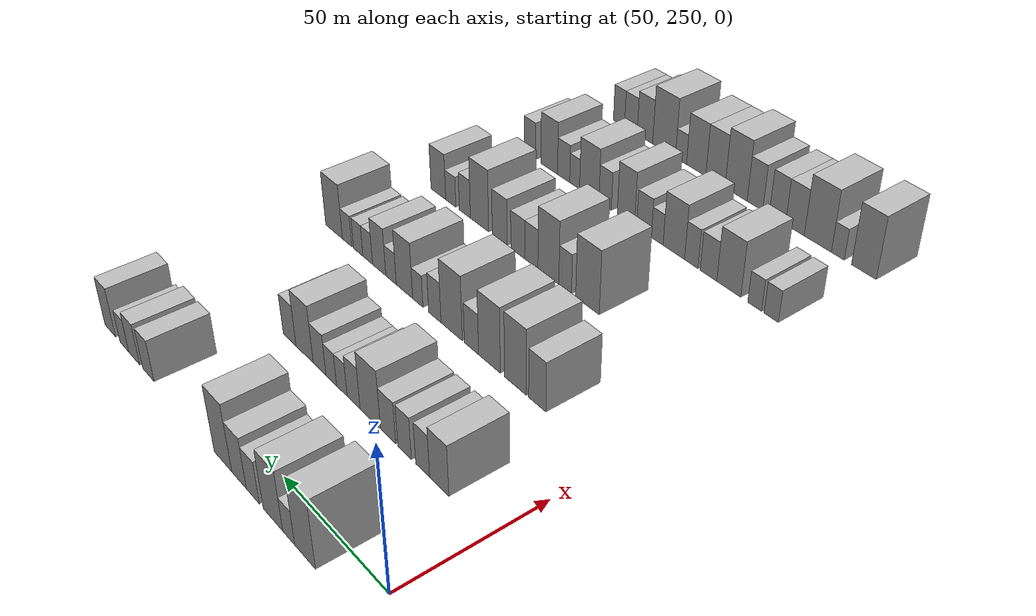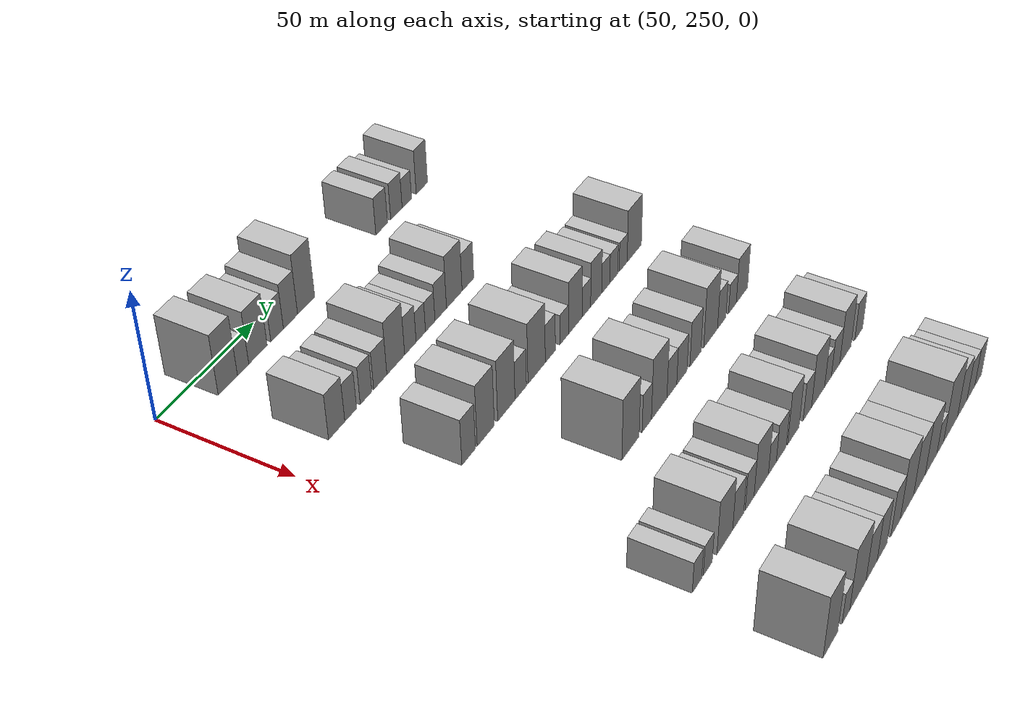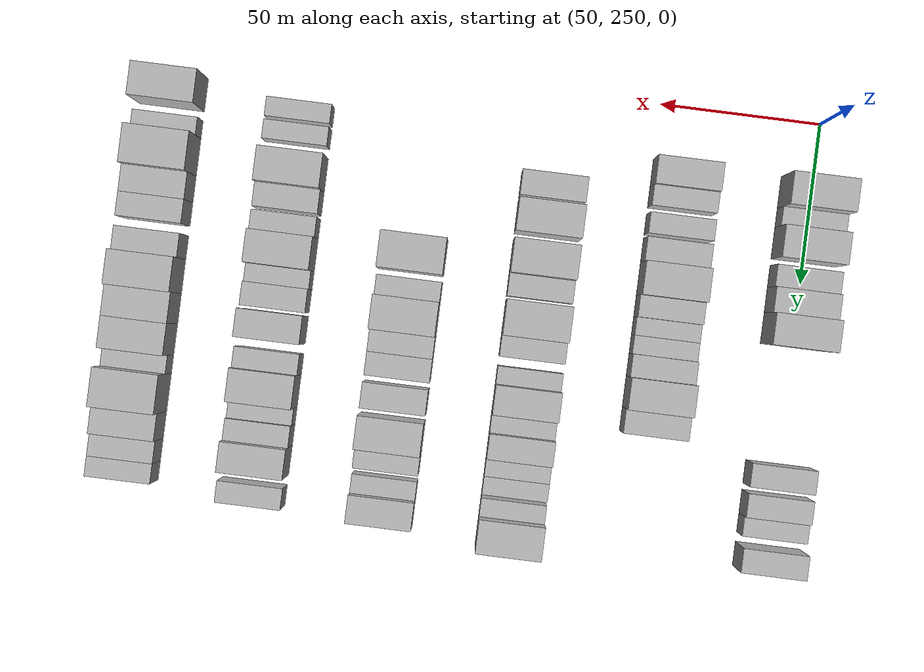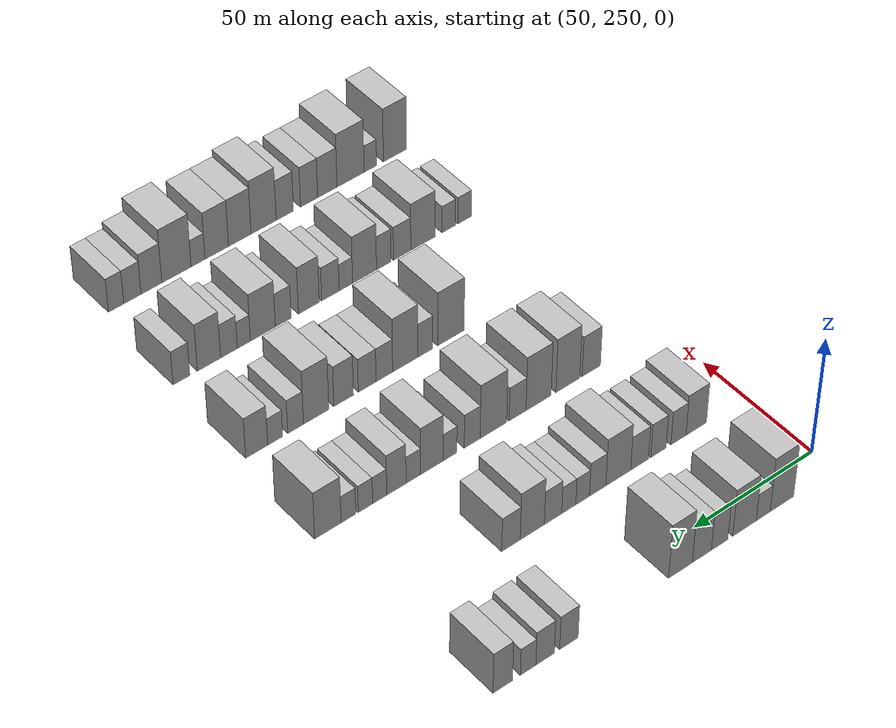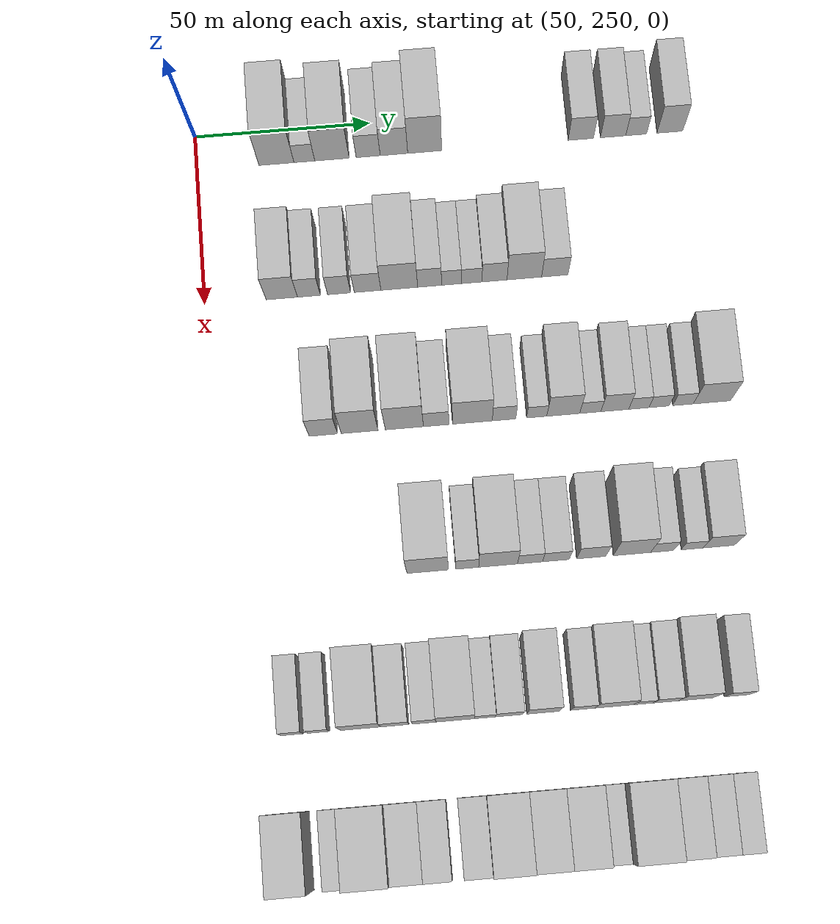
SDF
<sdf version="1.6">
 <world name="default">
  <model name="building_97">
   <static>1</static>
   <pose>50.0000 272.5509 0 0.000000 0.000000 0.000000</pose>
   <link name="link">
    <pose>0 0 12.00 0 0 0</pose>
    <collision name="collision"><geometry><box><size>20.0000 9.9506 24.0000</size></box></geometry></collision>
    <visual name="visual">
     <cast_shadows>0</cast_shadows>
     <geometry><box><size>20.0000 9.9506 24.0000</size></box></geometry>
     <material>
      <script>
       <uri>model://HANNAS_wall/materials/scripts</uri>
       <uri>model://HANNAS_wall/materials/textures</uri>
       <name>vrc/HANNAS_wall</name>
      </script>
     </material>
    </visual>
   </link>
  </model>
  <model name="building_98">
   <static>1</static>
   <pose>50.0000 280.4828 0 0.000000 0.000000 0.000000</pose>
   <link name="link">
    <pose>0 0 6.00 0 0 0</pose>
    <collision name="collision"><geometry><box><size>20.0000 5.9132 12.0000</size></box></geometry></collision>
    <visual name="visual">
     <cast_shadows>0</cast_shadows>
     <geometry><box><size>20.0000 5.9132 12.0000</size></box></geometry>
     <material>
      <script>
       <uri>model://HANNAS_wall/materials/scripts</uri>
       <uri>model://HANNAS_wall/materials/textures</uri>
       <name>vrc/HANNAS_wall</name>
      </script>
     </material>
    </visual>
   </link>
  </model>
  <model name="building_99">
   <static>1</static>
   <pose>50.0000 288.3583 0 0.000000 0.000000 0.000000</pose>
   <link name="link">
    <pose>0 0 10.50 0 0 0</pose>
    <collision name="collision"><geometry><box><size>20.0000 9.8378 21.0000</size></box></geometry></collision>
    <visual name="visual">
     <cast_shadows>0</cast_shadows>
     <geometry><box><size>20.0000 9.8378 21.0000</size></box></geometry>
     <material>
      <script>
       <uri>model://HANNAS_wall/materials/scripts</uri>
       <uri>model://HANNAS_wall/materials/textures</uri>
       <name>vrc/HANNAS_wall</name>
      </script>
     </material>
    </visual>
   </link>
  </model>
  <model name="building_100">
   <static>1</static>
   <pose>50.0000 298.7052 0 0.000000 0.000000 0.000000</pose>
   <link name="link">
    <pose>0 0 7.50 0 0 0</pose>
    <collision name="collision"><geometry><box><size>20.0000 6.8561 15.0000</size></box></geometry></collision>
    <visual name="visual">
     <cast_shadows>0</cast_shadows>
     <geometry><box><size>20.0000 6.8561 15.0000</size></box></geometry>
     <material>
      <script>
       <uri>model://HANNAS_wall/materials/scripts</uri>
       <uri>model://HANNAS_wall/materials/textures</uri>
       <name>vrc/HANNAS_wall</name>
      </script>
     </material>
    </visual>
   </link>
  </model>
  <model name="building_101">
   <static>1</static>
   <pose>50.0000 306.0664 0 0.000000 0.000000 0.000000</pose>
   <link name="link">
    <pose>0 0 9.00 0 0 0</pose>
    <collision name="collision"><geometry><box><size>20.0000 7.8663 18.0000</size></box></geometry></collision>
    <visual name="visual">
     <cast_shadows>0</cast_shadows>
     <geometry><box><size>20.0000 7.8663 18.0000</size></box></geometry>
     <material>
      <script>
       <uri>model://HANNAS_wall/materials/scripts</uri>
       <uri>model://HANNAS_wall/materials/textures</uri>
       <name>vrc/HANNAS_wall</name>
      </script>
     </material>
    </visual>
   </link>
  </model>
  <model name="building_102">
   <static>1</static>
   <pose>50.0000 314.8437 0 0.000000 0.000000 0.000000</pose>
   <link name="link">
    <pose>0 0 12.00 0 0 0</pose>
    <collision name="collision"><geometry><box><size>20.0000 9.6884 24.0000</size></box></geometry></collision>
    <visual name="visual">
     <cast_shadows>0</cast_shadows>
     <geometry><box><size>20.0000 9.6884 24.0000</size></box></geometry>
     <material>
      <script>
       <uri>model://HANNAS_wall/materials/scripts</uri>
       <uri>model://HANNAS_wall/materials/textures</uri>
       <name>vrc/HANNAS_wall</name>
      </script>
     </material>
    </visual>
   </link>
  </model>
  <model name="building_103">
   <static>1</static>
   <pose>50.0000 359.5507 0 0.000000 0.000000 0.000000</pose>
   <link name="link">
    <pose>0 0 7.50 0 0 0</pose>
    <collision name="collision"><geometry><box><size>20.0000 7.2418 15.0000</size></box></geometry></collision>
    <visual name="visual">
     <cast_shadows>0</cast_shadows>
     <geometry><box><size>20.0000 7.2418 15.0000</size></box></geometry>
     <material>
      <script>
       <uri>model://HANNAS_wall/materials/scripts</uri>
       <uri>model://HANNAS_wall/materials/textures</uri>
       <name>vrc/HANNAS_wall</name>
      </script>
     </material>
    </visual>
   </link>
  </model>
  <model name="building_104">
   <static>1</static>
   <pose>50.0000 368.8026 0 0.000000 0.000000 0.000000</pose>
   <link name="link">
    <pose>0 0 7.50 0 0 0</pose>
    <collision name="collision"><geometry><box><size>20.0000 7.2620 15.0000</size></box></geometry></collision>
    <visual name="visual">
     <cast_shadows>0</cast_shadows>
     <geometry><box><size>20.0000 7.2620 15.0000</size></box></geometry>
     <material>
      <script>
       <uri>model://HANNAS_wall/materials/scripts</uri>
       <uri>model://HANNAS_wall/materials/textures</uri>
       <name>vrc/HANNAS_wall</name>
      </script>
     </material>
    </visual>
   </link>
  </model>
  <model name="building_105">
   <static>1</static>
   <pose>50.0000 375.4313 0 0.000000 0.000000 0.000000</pose>
   <link name="link">
    <pose>0 0 6.00 0 0 0</pose>
    <collision name="collision"><geometry><box><size>20.0000 5.9953 12.0000</size></box></geometry></collision>
    <visual name="visual">
     <cast_shadows>0</cast_shadows>
     <geometry><box><size>20.0000 5.9953 12.0000</size></box></geometry>
     <material>
      <script>
       <uri>model://HANNAS_wall/materials/scripts</uri>
       <uri>model://HANNAS_wall/materials/textures</uri>
       <name>vrc/HANNAS_wall</name>
      </script>
     </material>
    </visual>
   </link>
  </model>
  <model name="building_106">
   <static>1</static>
   <pose>50.0000 385.1386 0 0.000000 0.000000 0.000000</pose>
   <link name="link">
    <pose>0 0 9.00 0 0 0</pose>
    <collision name="collision"><geometry><box><size>20.0000 7.4193 18.0000</size></box></geometry></collision>
    <visual name="visual">
     <cast_shadows>0</cast_shadows>
     <geometry><box><size>20.0000 7.4193 18.0000</size></box></geometry>
     <material>
      <script>
       <uri>model://HANNAS_wall/materials/scripts</uri>
       <uri>model://HANNAS_wall/materials/textures</uri>
       <name>vrc/HANNAS_wall</name>
      </script>
     </material>
    </visual>
   </link>
  </model>
  <model name="building_228">
   <static>1</static>
   <pose>90.0000 271.5846 0 0.000000 0.000000 0.000000</pose>
   <link name="link">
    <pose>0 0 9.00 0 0 0</pose>
    <collision name="collision"><geometry><box><size>20.0000 8.7259 18.0000</size></box></geometry></collision>
    <visual name="visual">
     <cast_shadows>0</cast_shadows>
     <geometry><box><size>20.0000 8.7259 18.0000</size></box></geometry>
     <material>
      <script>
       <uri>model://HANNAS_wall/materials/scripts</uri>
       <uri>model://HANNAS_wall/materials/textures</uri>
       <name>vrc/HANNAS_wall</name>
      </script>
     </material>
    </visual>
   </link>
  </model>
  <model name="building_229">
   <static>1</static>
   <pose>90.0000 279.1626 0 0.000000 0.000000 0.000000</pose>
   <link name="link">
    <pose>0 0 7.50 0 0 0</pose>
    <collision name="collision"><geometry><box><size>20.0000 6.4300 15.0000</size></box></geometry></collision>
    <visual name="visual">
     <cast_shadows>0</cast_shadows>
     <geometry><box><size>20.0000 6.4300 15.0000</size></box></geometry>
     <material>
      <script>
       <uri>model://HANNAS_wall/materials/scripts</uri>
       <uri>model://HANNAS_wall/materials/textures</uri>
       <name>vrc/HANNAS_wall</name>
      </script>
     </material>
    </visual>
   </link>
  </model>
  <model name="building_230">
   <static>1</static>
   <pose>90.0000 287.6108 0 0.000000 0.000000 0.000000</pose>
   <link name="link">
    <pose>0 0 7.50 0 0 0</pose>
    <collision name="collision"><geometry><box><size>20.0000 6.4664 15.0000</size></box></geometry></collision>
    <visual name="visual">
     <cast_shadows>0</cast_shadows>
     <geometry><box><size>20.0000 6.4664 15.0000</size></box></geometry>
     <material>
      <script>
       <uri>model://HANNAS_wall/materials/scripts</uri>
       <uri>model://HANNAS_wall/materials/textures</uri>
       <name>vrc/HANNAS_wall</name>
      </script>
     </material>
    </visual>
   </link>
  </model>
  <model name="building_231">
   <static>1</static>
   <pose>90.0000 295.5847 0 0.000000 0.000000 0.000000</pose>
   <link name="link">
    <pose>0 0 7.50 0 0 0</pose>
    <collision name="collision"><geometry><box><size>20.0000 7.4814 15.0000</size></box></geometry></collision>
    <visual name="visual">
     <cast_shadows>0</cast_shadows>
     <geometry><box><size>20.0000 7.4814 15.0000</size></box></geometry>
     <material>
      <script>
       <uri>model://HANNAS_wall/materials/scripts</uri>
       <uri>model://HANNAS_wall/materials/textures</uri>
       <name>vrc/HANNAS_wall</name>
      </script>
     </material>
    </visual>
   </link>
  </model>
  <model name="building_232">
   <static>1</static>
   <pose>90.0000 304.4700 0 0.000000 0.000000 0.000000</pose>
   <link name="link">
    <pose>0 0 10.50 0 0 0</pose>
    <collision name="collision"><geometry><box><size>20.0000 10.2892 21.0000</size></box></geometry></collision>
    <visual name="visual">
     <cast_shadows>0</cast_shadows>
     <geometry><box><size>20.0000 10.2892 21.0000</size></box></geometry>
     <material>
      <script>
       <uri>model://HANNAS_wall/materials/scripts</uri>
       <uri>model://HANNAS_wall/materials/textures</uri>
       <name>vrc/HANNAS_wall</name>
      </script>
     </material>
    </visual>
   </link>
  </model>
  <model name="building_233">
   <static>1</static>
   <pose>90.0000 312.9862 0 0.000000 0.000000 0.000000</pose>
   <link name="link">
    <pose>0 0 7.50 0 0 0</pose>
    <collision name="collision"><geometry><box><size>20.0000 6.7433 15.0000</size></box></geometry></collision>
    <visual name="visual">
     <cast_shadows>0</cast_shadows>
     <geometry><box><size>20.0000 6.7433 15.0000</size></box></geometry>
     <material>
      <script>
       <uri>model://HANNAS_wall/materials/scripts</uri>
       <uri>model://HANNAS_wall/materials/textures</uri>
       <name>vrc/HANNAS_wall</name>
      </script>
     </material>
    </visual>
   </link>
  </model>
  <model name="building_234">
   <static>1</static>
   <pose>90.0000 319.1508 0 0.000000 0.000000 0.000000</pose>
   <link name="link">
    <pose>0 0 6.00 0 0 0</pose>
    <collision name="collision"><geometry><box><size>20.0000 5.5858 12.0000</size></box></geometry></collision>
    <visual name="visual">
     <cast_shadows>0</cast_shadows>
     <geometry><box><size>20.0000 5.5858 12.0000</size></box></geometry>
     <material>
      <script>
       <uri>model://HANNAS_wall/materials/scripts</uri>
       <uri>model://HANNAS_wall/materials/textures</uri>
       <name>vrc/HANNAS_wall</name>
      </script>
     </material>
    </visual>
   </link>
  </model>
  <model name="building_235">
   <static>1</static>
   <pose>90.0000 324.8052 0 0.000000 0.000000 0.000000</pose>
   <link name="link">
    <pose>0 0 6.00 0 0 0</pose>
    <collision name="collision"><geometry><box><size>20.0000 5.7231 12.0000</size></box></geometry></collision>
    <visual name="visual">
     <cast_shadows>0</cast_shadows>
     <geometry><box><size>20.0000 5.7231 12.0000</size></box></geometry>
     <material>
      <script>
       <uri>model://HANNAS_wall/materials/scripts</uri>
       <uri>model://HANNAS_wall/materials/textures</uri>
       <name>vrc/HANNAS_wall</name>
      </script>
     </material>
    </visual>
   </link>
  </model>
  <model name="building_236">
   <static>1</static>
   <pose>90.0000 331.1843 0 0.000000 0.000000 0.000000</pose>
   <link name="link">
    <pose>0 0 7.50 0 0 0</pose>
    <collision name="collision"><geometry><box><size>20.0000 7.0351 15.0000</size></box></geometry></collision>
    <visual name="visual">
     <cast_shadows>0</cast_shadows>
     <geometry><box><size>20.0000 7.0351 15.0000</size></box></geometry>
     <material>
      <script>
       <uri>model://HANNAS_wall/materials/scripts</uri>
       <uri>model://HANNAS_wall/materials/textures</uri>
       <name>vrc/HANNAS_wall</name>
      </script>
     </material>
    </visual>
   </link>
  </model>
  <model name="building_237">
   <static>1</static>
   <pose>90.0000 339.5651 0 0.000000 0.000000 0.000000</pose>
   <link name="link">
    <pose>0 0 10.50 0 0 0</pose>
    <collision name="collision"><geometry><box><size>20.0000 9.7265 21.0000</size></box></geometry></collision>
    <visual name="visual">
     <cast_shadows>0</cast_shadows>
     <geometry><box><size>20.0000 9.7265 21.0000</size></box></geometry>
     <material>
      <script>
       <uri>model://HANNAS_wall/materials/scripts</uri>
       <uri>model://HANNAS_wall/materials/textures</uri>
       <name>vrc/HANNAS_wall</name>
      </script>
     </material>
    </visual>
   </link>
  </model>
  <model name="building_238">
   <static>1</static>
   <pose>90.0000 348.1301 0 0.000000 0.000000 0.000000</pose>
   <link name="link">
    <pose>0 0 7.50 0 0 0</pose>
    <collision name="collision"><geometry><box><size>20.0000 7.4037 15.0000</size></box></geometry></collision>
    <visual name="visual">
     <cast_shadows>0</cast_shadows>
     <geometry><box><size>20.0000 7.4037 15.0000</size></box></geometry>
     <material>
      <script>
       <uri>model://HANNAS_wall/materials/scripts</uri>
       <uri>model://HANNAS_wall/materials/textures</uri>
       <name>vrc/HANNAS_wall</name>
      </script>
     </material>
    </visual>
   </link>
  </model>
  <model name="building_358">
   <static>1</static>
   <pose>130.0000 280.5028 0 0.000000 0.000000 0.000000</pose>
   <link name="link">
    <pose>0 0 9.00 0 0 0</pose>
    <collision name="collision"><geometry><box><size>20.0000 7.7911 18.0000</size></box></geometry></collision>
    <visual name="visual">
     <cast_shadows>0</cast_shadows>
     <geometry><box><size>20.0000 7.7911 18.0000</size></box></geometry>
     <material>
      <script>
       <uri>model://HANNAS_wall/materials/scripts</uri>
       <uri>model://HANNAS_wall/materials/textures</uri>
       <name>vrc/HANNAS_wall</name>
      </script>
     </material>
    </visual>
   </link>
  </model>
  <model name="building_359">
   <static>1</static>
   <pose>130.0000 290.4508 0 0.000000 0.000000 0.000000</pose>
   <link name="link">
    <pose>0 0 12.00 0 0 0</pose>
    <collision name="collision"><geometry><box><size>20.0000 10.1050 24.0000</size></box></geometry></collision>
    <visual name="visual">
     <cast_shadows>0</cast_shadows>
     <geometry><box><size>20.0000 10.1050 24.0000</size></box></geometry>
     <material>
      <script>
       <uri>model://HANNAS_wall/materials/scripts</uri>
       <uri>model://HANNAS_wall/materials/textures</uri>
       <name>vrc/HANNAS_wall</name>
      </script>
     </material>
    </visual>
   </link>
  </model>
  <model name="building_360">
   <static>1</static>
   <pose>130.0000 302.7455 0 0.000000 0.000000 0.000000</pose>
   <link name="link">
    <pose>0 0 12.00 0 0 0</pose>
    <collision name="collision"><geometry><box><size>20.0000 10.4844 24.0000</size></box></geometry></collision>
    <visual name="visual">
     <cast_shadows>0</cast_shadows>
     <geometry><box><size>20.0000 10.4844 24.0000</size></box></geometry>
     <material>
      <script>
       <uri>model://HANNAS_wall/materials/scripts</uri>
       <uri>model://HANNAS_wall/materials/textures</uri>
       <name>vrc/HANNAS_wall</name>
      </script>
     </material>
    </visual>
   </link>
  </model>
  <model name="building_361">
   <static>1</static>
   <pose>130.0000 311.4970 0 0.000000 0.000000 0.000000</pose>
   <link name="link">
    <pose>0 0 7.50 0 0 0</pose>
    <collision name="collision"><geometry><box><size>20.0000 7.0185 15.0000</size></box></geometry></collision>
    <visual name="visual">
     <cast_shadows>0</cast_shadows>
     <geometry><box><size>20.0000 7.0185 15.0000</size></box></geometry>
     <material>
      <script>
       <uri>model://HANNAS_wall/materials/scripts</uri>
       <uri>model://HANNAS_wall/materials/textures</uri>
       <name>vrc/HANNAS_wall</name>
      </script>
     </material>
    </visual>
   </link>
  </model>
  <model name="building_362">
   <static>1</static>
   <pose>130.0000 321.4731 0 0.000000 0.000000 0.000000</pose>
   <link name="link">
    <pose>0 0 12.00 0 0 0</pose>
    <collision name="collision"><geometry><box><size>20.0000 10.9337 24.0000</size></box></geometry></collision>
    <visual name="visual">
     <cast_shadows>0</cast_shadows>
     <geometry><box><size>20.0000 10.9337 24.0000</size></box></geometry>
     <material>
      <script>
       <uri>model://HANNAS_wall/materials/scripts</uri>
       <uri>model://HANNAS_wall/materials/textures</uri>
       <name>vrc/HANNAS_wall</name>
      </script>
     </material>
    </visual>
   </link>
  </model>
  <model name="building_363">
   <static>1</static>
   <pose>130.0000 330.1813 0 0.000000 0.000000 0.000000</pose>
   <link name="link">
    <pose>0 0 7.50 0 0 0</pose>
    <collision name="collision"><geometry><box><size>20.0000 6.4826 15.0000</size></box></geometry></collision>
    <visual name="visual">
     <cast_shadows>0</cast_shadows>
     <geometry><box><size>20.0000 6.4826 15.0000</size></box></geometry>
     <material>
      <script>
       <uri>model://HANNAS_wall/materials/scripts</uri>
       <uri>model://HANNAS_wall/materials/textures</uri>
       <name>vrc/HANNAS_wall</name>
      </script>
     </material>
    </visual>
   </link>
  </model>
  <model name="building_364">
   <static>1</static>
   <pose>130.0000 339.1936 0 0.000000 0.000000 0.000000</pose>
   <link name="link">
    <pose>0 0 6.00 0 0 0</pose>
    <collision name="collision"><geometry><box><size>20.0000 5.5422 12.0000</size></box></geometry></collision>
    <visual name="visual">
     <cast_shadows>0</cast_shadows>
     <geometry><box><size>20.0000 5.5422 12.0000</size></box></geometry>
     <material>
      <script>
       <uri>model://HANNAS_wall/materials/scripts</uri>
       <uri>model://HANNAS_wall/materials/textures</uri>
       <name>vrc/HANNAS_wall</name>
      </script>
     </material>
    </visual>
   </link>
  </model>
  <model name="building_365">
   <static>1</static>
   <pose>130.0000 346.5102 0 0.000000 0.000000 0.000000</pose>
   <link name="link">
    <pose>0 0 10.50 0 0 0</pose>
    <collision name="collision"><geometry><box><size>20.0000 9.0910 21.0000</size></box></geometry></collision>
    <visual name="visual">
     <cast_shadows>0</cast_shadows>
     <geometry><box><size>20.0000 9.0910 21.0000</size></box></geometry>
     <material>
      <script>
       <uri>model://HANNAS_wall/materials/scripts</uri>
       <uri>model://HANNAS_wall/materials/textures</uri>
       <name>vrc/HANNAS_wall</name>
      </script>
     </material>
    </visual>
   </link>
  </model>
  <model name="building_366">
   <static>1</static>
   <pose>130.0000 353.9760 0 0.000000 0.000000 0.000000</pose>
   <link name="link">
    <pose>0 0 6.00 0 0 0</pose>
    <collision name="collision"><geometry><box><size>20.0000 5.8406 12.0000</size></box></geometry></collision>
    <visual name="visual">
     <cast_shadows>0</cast_shadows>
     <geometry><box><size>20.0000 5.8406 12.0000</size></box></geometry>
     <material>
      <script>
       <uri>model://HANNAS_wall/materials/scripts</uri>
       <uri>model://HANNAS_wall/materials/textures</uri>
       <name>vrc/HANNAS_wall</name>
      </script>
     </material>
    </visual>
   </link>
  </model>
  <model name="building_367">
   <static>1</static>
   <pose>130.0000 360.7515 0 0.000000 0.000000 0.000000</pose>
   <link name="link">
    <pose>0 0 9.00 0 0 0</pose>
    <collision name="collision"><geometry><box><size>20.0000 7.7103 18.0000</size></box></geometry></collision>
    <visual name="visual">
     <cast_shadows>0</cast_shadows>
     <geometry><box><size>20.0000 7.7103 18.0000</size></box></geometry>
     <material>
      <script>
       <uri>model://HANNAS_wall/materials/scripts</uri>
       <uri>model://HANNAS_wall/materials/textures</uri>
       <name>vrc/HANNAS_wall</name>
      </script>
     </material>
    </visual>
   </link>
  </model>
  <model name="building_368">
   <static>1</static>
   <pose>130.0000 367.4004 0 0.000000 0.000000 0.000000</pose>
   <link name="link">
    <pose>0 0 6.00 0 0 0</pose>
    <collision name="collision"><geometry><box><size>20.0000 5.5874 12.0000</size></box></geometry></collision>
    <visual name="visual">
     <cast_shadows>0</cast_shadows>
     <geometry><box><size>20.0000 5.5874 12.0000</size></box></geometry>
     <material>
      <script>
       <uri>model://HANNAS_wall/materials/scripts</uri>
       <uri>model://HANNAS_wall/materials/textures</uri>
       <name>vrc/HANNAS_wall</name>
      </script>
     </material>
    </visual>
   </link>
  </model>
  <model name="building_369">
   <static>1</static>
   <pose>130.0000 373.0007 0 0.000000 0.000000 0.000000</pose>
   <link name="link">
    <pose>0 0 6.00 0 0 0</pose>
    <collision name="collision"><geometry><box><size>20.0000 5.6132 12.0000</size></box></geometry></collision>
    <visual name="visual">
     <cast_shadows>0</cast_shadows>
     <geometry><box><size>20.0000 5.6132 12.0000</size></box></geometry>
     <material>
      <script>
       <uri>model://HANNAS_wall/materials/scripts</uri>
       <uri>model://HANNAS_wall/materials/textures</uri>
       <name>vrc/HANNAS_wall</name>
      </script>
     </material>
    </visual>
   </link>
  </model>
  <model name="building_370">
   <static>1</static>
   <pose>130.0000 379.6596 0 0.000000 0.000000 0.000000</pose>
   <link name="link">
    <pose>0 0 6.00 0 0 0</pose>
    <collision name="collision"><geometry><box><size>20.0000 5.7044 12.0000</size></box></geometry></collision>
    <visual name="visual">
     <cast_shadows>0</cast_shadows>
     <geometry><box><size>20.0000 5.7044 12.0000</size></box></geometry>
     <material>
      <script>
       <uri>model://HANNAS_wall/materials/scripts</uri>
       <uri>model://HANNAS_wall/materials/textures</uri>
       <name>vrc/HANNAS_wall</name>
      </script>
     </material>
    </visual>
   </link>
  </model>
  <model name="building_371">
   <static>1</static>
   <pose>130.0000 387.6596 0 0.000000 0.000000 0.000000</pose>
   <link name="link">
    <pose>0 0 10.50 0 0 0</pose>
    <collision name="collision"><geometry><box><size>20.0000 10.2957 21.0000</size></box></geometry></collision>
    <visual name="visual">
     <cast_shadows>0</cast_shadows>
     <geometry><box><size>20.0000 10.2957 21.0000</size></box></geometry>
     <material>
      <script>
       <uri>model://HANNAS_wall/materials/scripts</uri>
       <uri>model://HANNAS_wall/materials/textures</uri>
       <name>vrc/HANNAS_wall</name>
      </script>
     </material>
    </visual>
   </link>
  </model>
  <model name="building_498">
   <static>1</static>
   <pose>170.0000 305.8852 0 0.000000 0.000000 0.000000</pose>
   <link name="link">
    <pose>0 0 12.00 0 0 0</pose>
    <collision name="collision"><geometry><box><size>20.0000 11.1618 24.0000</size></box></geometry></collision>
    <visual name="visual">
     <cast_shadows>0</cast_shadows>
     <geometry><box><size>20.0000 11.1618 24.0000</size></box></geometry>
     <material>
      <script>
       <uri>model://HANNAS_wall/materials/scripts</uri>
       <uri>model://HANNAS_wall/materials/textures</uri>
       <name>vrc/HANNAS_wall</name>
      </script>
     </material>
    </visual>
   </link>
  </model>
  <model name="building_499">
   <static>1</static>
   <pose>170.0000 316.5534 0 0.000000 0.000000 0.000000</pose>
   <link name="link">
    <pose>0 0 7.50 0 0 0</pose>
    <collision name="collision"><geometry><box><size>20.0000 6.1747 15.0000</size></box></geometry></collision>
    <visual name="visual">
     <cast_shadows>0</cast_shadows>
     <geometry><box><size>20.0000 6.1747 15.0000</size></box></geometry>
     <material>
      <script>
       <uri>model://HANNAS_wall/materials/scripts</uri>
       <uri>model://HANNAS_wall/materials/textures</uri>
       <name>vrc/HANNAS_wall</name>
      </script>
     </material>
    </visual>
   </link>
  </model>
  <model name="building_500">
   <static>1</static>
   <pose>170.0000 324.8848 0 0.000000 0.000000 0.000000</pose>
   <link name="link">
    <pose>0 0 12.00 0 0 0</pose>
    <collision name="collision"><geometry><box><size>20.0000 10.4881 24.0000</size></box></geometry></collision>
    <visual name="visual">
     <cast_shadows>0</cast_shadows>
     <geometry><box><size>20.0000 10.4881 24.0000</size></box></geometry>
     <material>
      <script>
       <uri>model://HANNAS_wall/materials/scripts</uri>
       <uri>model://HANNAS_wall/materials/textures</uri>
       <name>vrc/HANNAS_wall</name>
      </script>
     </material>
    </visual>
   </link>
  </model>
  <model name="building_501">
   <static>1</static>
   <pose>170.0000 333.5256 0 0.000000 0.000000 0.000000</pose>
   <link name="link">
    <pose>0 0 7.50 0 0 0</pose>
    <collision name="collision"><geometry><box><size>20.0000 6.7937 15.0000</size></box></geometry></collision>
    <visual name="visual">
     <cast_shadows>0</cast_shadows>
     <geometry><box><size>20.0000 6.7937 15.0000</size></box></geometry>
     <material>
      <script>
       <uri>model://HANNAS_wall/materials/scripts</uri>
       <uri>model://HANNAS_wall/materials/textures</uri>
       <name>vrc/HANNAS_wall</name>
      </script>
     </material>
    </visual>
   </link>
  </model>
  <model name="building_502">
   <static>1</static>
   <pose>170.0000 340.5341 0 0.000000 0.000000 0.000000</pose>
   <link name="link">
    <pose>0 0 7.50 0 0 0</pose>
    <collision name="collision"><geometry><box><size>20.0000 7.2232 15.0000</size></box></geometry></collision>
    <visual name="visual">
     <cast_shadows>0</cast_shadows>
     <geometry><box><size>20.0000 7.2232 15.0000</size></box></geometry>
     <material>
      <script>
       <uri>model://HANNAS_wall/materials/scripts</uri>
       <uri>model://HANNAS_wall/materials/textures</uri>
       <name>vrc/HANNAS_wall</name>
      </script>
     </material>
    </visual>
   </link>
  </model>
  <model name="building_503">
   <static>1</static>
   <pose>170.0000 350.1100 0 0.000000 0.000000 0.000000</pose>
   <link name="link">
    <pose>0 0 9.00 0 0 0</pose>
    <collision name="collision"><geometry><box><size>20.0000 7.9288 18.0000</size></box></geometry></collision>
    <visual name="visual">
     <cast_shadows>0</cast_shadows>
     <geometry><box><size>20.0000 7.9288 18.0000</size></box></geometry>
     <material>
      <script>
       <uri>model://HANNAS_wall/materials/scripts</uri>
       <uri>model://HANNAS_wall/materials/textures</uri>
       <name>vrc/HANNAS_wall</name>
      </script>
     </material>
    </visual>
   </link>
  </model>
  <model name="building_504">
   <static>1</static>
   <pose>170.0000 361.1474 0 0.000000 0.000000 0.000000</pose>
   <link name="link">
    <pose>0 0 12.00 0 0 0</pose>
    <collision name="collision"><geometry><box><size>20.0000 10.1461 24.0000</size></box></geometry></collision>
    <visual name="visual">
     <cast_shadows>0</cast_shadows>
     <geometry><box><size>20.0000 10.1461 24.0000</size></box></geometry>
     <material>
      <script>
       <uri>model://HANNAS_wall/materials/scripts</uri>
       <uri>model://HANNAS_wall/materials/textures</uri>
       <name>vrc/HANNAS_wall</name>
      </script>
     </material>
    </visual>
   </link>
  </model>
  <model name="building_505">
   <static>1</static>
   <pose>170.0000 369.3567 0 0.000000 0.000000 0.000000</pose>
   <link name="link">
    <pose>0 0 7.50 0 0 0</pose>
    <collision name="collision"><geometry><box><size>20.0000 6.2725 15.0000</size></box></geometry></collision>
    <visual name="visual">
     <cast_shadows>0</cast_shadows>
     <geometry><box><size>20.0000 6.2725 15.0000</size></box></geometry>
     <material>
      <script>
       <uri>model://HANNAS_wall/materials/scripts</uri>
       <uri>model://HANNAS_wall/materials/textures</uri>
       <name>vrc/HANNAS_wall</name>
      </script>
     </material>
    </visual>
   </link>
  </model>
  <model name="building_506">
   <static>1</static>
   <pose>170.0000 377.4386 0 0.000000 0.000000 0.000000</pose>
   <link name="link">
    <pose>0 0 6.00 0 0 0</pose>
    <collision name="collision"><geometry><box><size>20.0000 5.8913 12.0000</size></box></geometry></collision>
    <visual name="visual">
     <cast_shadows>0</cast_shadows>
     <geometry><box><size>20.0000 5.8913 12.0000</size></box></geometry>
     <material>
      <script>
       <uri>model://HANNAS_wall/materials/scripts</uri>
       <uri>model://HANNAS_wall/materials/textures</uri>
       <name>vrc/HANNAS_wall</name>
      </script>
     </material>
    </visual>
   </link>
  </model>
  <model name="building_507">
   <static>1</static>
   <pose>170.0000 384.7126 0 0.000000 0.000000 0.000000</pose>
   <link name="link">
    <pose>0 0 9.00 0 0 0</pose>
    <collision name="collision"><geometry><box><size>20.0000 8.6568 18.0000</size></box></geometry></collision>
    <visual name="visual">
     <cast_shadows>0</cast_shadows>
     <geometry><box><size>20.0000 8.6568 18.0000</size></box></geometry>
     <material>
      <script>
       <uri>model://HANNAS_wall/materials/scripts</uri>
       <uri>model://HANNAS_wall/materials/textures</uri>
       <name>vrc/HANNAS_wall</name>
      </script>
     </material>
    </visual>
   </link>
  </model>
  <model name="building_632">
   <static>1</static>
   <pose>210.0000 266.9432 0 0.000000 0.000000 0.000000</pose>
   <link name="link">
    <pose>0 0 6.00 0 0 0</pose>
    <collision name="collision"><geometry><box><size>20.0000 5.9238 12.0000</size></box></geometry></collision>
    <visual name="visual">
     <cast_shadows>0</cast_shadows>
     <geometry><box><size>20.0000 5.9238 12.0000</size></box></geometry>
     <material>
      <script>
       <uri>model://HANNAS_wall/materials/scripts</uri>
       <uri>model://HANNAS_wall/materials/textures</uri>
       <name>vrc/HANNAS_wall</name>
      </script>
     </material>
    </visual>
   </link>
  </model>
  <model name="building_633">
   <static>1</static>
   <pose>210.0000 273.8281 0 0.000000 0.000000 0.000000</pose>
   <link name="link">
    <pose>0 0 6.00 0 0 0</pose>
    <collision name="collision"><geometry><box><size>20.0000 5.8461 12.0000</size></box></geometry></collision>
    <visual name="visual">
     <cast_shadows>0</cast_shadows>
     <geometry><box><size>20.0000 5.8461 12.0000</size></box></geometry>
     <material>
      <script>
       <uri>model://HANNAS_wall/materials/scripts</uri>
       <uri>model://HANNAS_wall/materials/textures</uri>
       <name>vrc/HANNAS_wall</name>
      </script>
     </material>
    </visual>
   </link>
  </model>
  <model name="building_634">
   <static>1</static>
   <pose>210.0000 284.9983 0 0.000000 0.000000 0.000000</pose>
   <link name="link">
    <pose>0 0 10.50 0 0 0</pose>
    <collision name="collision"><geometry><box><size>20.0000 10.4942 21.0000</size></box></geometry></collision>
    <visual name="visual">
     <cast_shadows>0</cast_shadows>
     <geometry><box><size>20.0000 10.4942 21.0000</size></box></geometry>
     <material>
      <script>
       <uri>model://HANNAS_wall/materials/scripts</uri>
       <uri>model://HANNAS_wall/materials/textures</uri>
       <name>vrc/HANNAS_wall</name>
      </script>
     </material>
    </visual>
   </link>
  </model>
  <model name="building_635">
   <static>1</static>
   <pose>210.0000 293.9568 0 0.000000 0.000000 0.000000</pose>
   <link name="link">
    <pose>0 0 7.50 0 0 0</pose>
    <collision name="collision"><geometry><box><size>20.0000 7.4229 15.0000</size></box></geometry></collision>
    <visual name="visual">
     <cast_shadows>0</cast_shadows>
     <geometry><box><size>20.0000 7.4229 15.0000</size></box></geometry>
     <material>
      <script>
       <uri>model://HANNAS_wall/materials/scripts</uri>
       <uri>model://HANNAS_wall/materials/textures</uri>
       <name>vrc/HANNAS_wall</name>
      </script>
     </material>
    </visual>
   </link>
  </model>
  <model name="building_636">
   <static>1</static>
   <pose>210.0000 301.7578 0 0.000000 0.000000 0.000000</pose>
   <link name="link">
    <pose>0 0 7.50 0 0 0</pose>
    <collision name="collision"><geometry><box><size>20.0000 6.1790 15.0000</size></box></geometry></collision>
    <visual name="visual">
     <cast_shadows>0</cast_shadows>
     <geometry><box><size>20.0000 6.1790 15.0000</size></box></geometry>
     <material>
      <script>
       <uri>model://HANNAS_wall/materials/scripts</uri>
       <uri>model://HANNAS_wall/materials/textures</uri>
       <name>vrc/HANNAS_wall</name>
      </script>
     </material>
    </visual>
   </link>
  </model>
  <model name="building_637">
   <static>1</static>
   <pose>210.0000 309.8899 0 0.000000 0.000000 0.000000</pose>
   <link name="link">
    <pose>0 0 10.50 0 0 0</pose>
    <collision name="collision"><geometry><box><size>20.0000 10.0853 21.0000</size></box></geometry></collision>
    <visual name="visual">
     <cast_shadows>0</cast_shadows>
     <geometry><box><size>20.0000 10.0853 21.0000</size></box></geometry>
     <material>
      <script>
       <uri>model://HANNAS_wall/materials/scripts</uri>
       <uri>model://HANNAS_wall/materials/textures</uri>
       <name>vrc/HANNAS_wall</name>
      </script>
     </material>
    </visual>
   </link>
  </model>
  <model name="building_638">
   <static>1</static>
   <pose>210.0000 317.7568 0 0.000000 0.000000 0.000000</pose>
   <link name="link">
    <pose>0 0 6.00 0 0 0</pose>
    <collision name="collision"><geometry><box><size>20.0000 5.6484 12.0000</size></box></geometry></collision>
    <visual name="visual">
     <cast_shadows>0</cast_shadows>
     <geometry><box><size>20.0000 5.6484 12.0000</size></box></geometry>
     <material>
      <script>
       <uri>model://HANNAS_wall/materials/scripts</uri>
       <uri>model://HANNAS_wall/materials/textures</uri>
       <name>vrc/HANNAS_wall</name>
      </script>
     </material>
    </visual>
   </link>
  </model>
  <model name="building_639">
   <static>1</static>
   <pose>210.0000 324.2070 0 0.000000 0.000000 0.000000</pose>
   <link name="link">
    <pose>0 0 7.50 0 0 0</pose>
    <collision name="collision"><geometry><box><size>20.0000 7.2521 15.0000</size></box></geometry></collision>
    <visual name="visual">
     <cast_shadows>0</cast_shadows>
     <geometry><box><size>20.0000 7.2521 15.0000</size></box></geometry>
     <material>
      <script>
       <uri>model://HANNAS_wall/materials/scripts</uri>
       <uri>model://HANNAS_wall/materials/textures</uri>
       <name>vrc/HANNAS_wall</name>
      </script>
     </material>
    </visual>
   </link>
  </model>
  <model name="building_640">
   <static>1</static>
   <pose>210.0000 333.1458 0 0.000000 0.000000 0.000000</pose>
   <link name="link">
    <pose>0 0 10.50 0 0 0</pose>
    <collision name="collision"><geometry><box><size>20.0000 8.6254 21.0000</size></box></geometry></collision>
    <visual name="visual">
     <cast_shadows>0</cast_shadows>
     <geometry><box><size>20.0000 8.6254 21.0000</size></box></geometry>
     <material>
      <script>
       <uri>model://HANNAS_wall/materials/scripts</uri>
       <uri>model://HANNAS_wall/materials/textures</uri>
       <name>vrc/HANNAS_wall</name>
      </script>
     </material>
    </visual>
   </link>
  </model>
  <model name="building_641">
   <static>1</static>
   <pose>210.0000 343.6794 0 0.000000 0.000000 0.000000</pose>
   <link name="link">
    <pose>0 0 7.50 0 0 0</pose>
    <collision name="collision"><geometry><box><size>20.0000 6.4419 15.0000</size></box></geometry></collision>
    <visual name="visual">
     <cast_shadows>0</cast_shadows>
     <geometry><box><size>20.0000 6.4419 15.0000</size></box></geometry>
     <material>
      <script>
       <uri>model://HANNAS_wall/materials/scripts</uri>
       <uri>model://HANNAS_wall/materials/textures</uri>
       <name>vrc/HANNAS_wall</name>
      </script>
     </material>
    </visual>
   </link>
  </model>
  <model name="building_642">
   <static>1</static>
   <pose>210.0000 351.9870 0 0.000000 0.000000 0.000000</pose>
   <link name="link">
    <pose>0 0 10.50 0 0 0</pose>
    <collision name="collision"><geometry><box><size>20.0000 10.1732 21.0000</size></box></geometry></collision>
    <visual name="visual">
     <cast_shadows>0</cast_shadows>
     <geometry><box><size>20.0000 10.1732 21.0000</size></box></geometry>
     <material>
      <script>
       <uri>model://HANNAS_wall/materials/scripts</uri>
       <uri>model://HANNAS_wall/materials/textures</uri>
       <name>vrc/HANNAS_wall</name>
      </script>
     </material>
    </visual>
   </link>
  </model>
  <model name="building_643">
   <static>1</static>
   <pose>210.0000 359.7140 0 0.000000 0.000000 0.000000</pose>
   <link name="link">
    <pose>0 0 6.00 0 0 0</pose>
    <collision name="collision"><geometry><box><size>20.0000 5.2808 12.0000</size></box></geometry></collision>
    <visual name="visual">
     <cast_shadows>0</cast_shadows>
     <geometry><box><size>20.0000 5.2808 12.0000</size></box></geometry>
     <material>
      <script>
       <uri>model://HANNAS_wall/materials/scripts</uri>
       <uri>model://HANNAS_wall/materials/textures</uri>
       <name>vrc/HANNAS_wall</name>
      </script>
     </material>
    </visual>
   </link>
  </model>
  <model name="building_644">
   <static>1</static>
   <pose>210.0000 365.7146 0 0.000000 0.000000 0.000000</pose>
   <link name="link">
    <pose>0 0 7.50 0 0 0</pose>
    <collision name="collision"><geometry><box><size>20.0000 6.7206 15.0000</size></box></geometry></collision>
    <visual name="visual">
     <cast_shadows>0</cast_shadows>
     <geometry><box><size>20.0000 6.7206 15.0000</size></box></geometry>
     <material>
      <script>
       <uri>model://HANNAS_wall/materials/scripts</uri>
       <uri>model://HANNAS_wall/materials/textures</uri>
       <name>vrc/HANNAS_wall</name>
      </script>
     </material>
    </visual>
   </link>
  </model>
  <model name="building_645">
   <static>1</static>
   <pose>210.0000 373.7069 0 0.000000 0.000000 0.000000</pose>
   <link name="link">
    <pose>0 0 10.50 0 0 0</pose>
    <collision name="collision"><geometry><box><size>20.0000 9.2639 21.0000</size></box></geometry></collision>
    <visual name="visual">
     <cast_shadows>0</cast_shadows>
     <geometry><box><size>20.0000 9.2639 21.0000</size></box></geometry>
     <material>
      <script>
       <uri>model://HANNAS_wall/materials/scripts</uri>
       <uri>model://HANNAS_wall/materials/textures</uri>
       <name>vrc/HANNAS_wall</name>
      </script>
     </material>
    </visual>
   </link>
  </model>
  <model name="building_646">
   <static>1</static>
   <pose>210.0000 384.6382 0 0.000000 0.000000 0.000000</pose>
   <link name="link">
    <pose>0 0 7.50 0 0 0</pose>
    <collision name="collision"><geometry><box><size>20.0000 6.5988 15.0000</size></box></geometry></collision>
    <visual name="visual">
     <cast_shadows>0</cast_shadows>
     <geometry><box><size>20.0000 6.5988 15.0000</size></box></geometry>
     <material>
      <script>
       <uri>model://HANNAS_wall/materials/scripts</uri>
       <uri>model://HANNAS_wall/materials/textures</uri>
       <name>vrc/HANNAS_wall</name>
      </script>
     </material>
    </visual>
   </link>
  </model>
  <model name="building_772">
   <static>1</static>
   <pose>250.0000 264.8762 0 0.000000 0.000000 0.000000</pose>
   <link name="link">
    <pose>0 0 12.00 0 0 0</pose>
    <collision name="collision"><geometry><box><size>20.0000 10.1275 24.0000</size></box></geometry></collision>
    <visual name="visual">
     <cast_shadows>0</cast_shadows>
     <geometry><box><size>20.0000 10.1275 24.0000</size></box></geometry>
     <material>
      <script>
       <uri>model://HANNAS_wall/materials/scripts</uri>
       <uri>model://HANNAS_wall/materials/textures</uri>
       <name>vrc/HANNAS_wall</name>
      </script>
     </material>
    </visual>
   </link>
  </model>
  <model name="building_773">
   <static>1</static>
   <pose>250.0000 275.6641 0 0.000000 0.000000 0.000000</pose>
   <link name="link">
    <pose>0 0 6.00 0 0 0</pose>
    <collision name="collision"><geometry><box><size>20.0000 5.4483 12.0000</size></box></geometry></collision>
    <visual name="visual">
     <cast_shadows>0</cast_shadows>
     <geometry><box><size>20.0000 5.4483 12.0000</size></box></geometry>
     <material>
      <script>
       <uri>model://HANNAS_wall/materials/scripts</uri>
       <uri>model://HANNAS_wall/materials/textures</uri>
       <name>vrc/HANNAS_wall</name>
      </script>
     </material>
    </visual>
   </link>
  </model>
  <model name="building_774">
   <static>1</static>
   <pose>250.0000 284.2621 0 0.000000 0.000000 0.000000</pose>
   <link name="link">
    <pose>0 0 12.00 0 0 0</pose>
    <collision name="collision"><geometry><box><size>20.0000 11.7478 24.0000</size></box></geometry></collision>
    <visual name="visual">
     <cast_shadows>0</cast_shadows>
     <geometry><box><size>20.0000 11.7478 24.0000</size></box></geometry>
     <material>
      <script>
       <uri>model://HANNAS_wall/materials/scripts</uri>
       <uri>model://HANNAS_wall/materials/textures</uri>
       <name>vrc/HANNAS_wall</name>
      </script>
     </material>
    </visual>
   </link>
  </model>
  <model name="building_775">
   <static>1</static>
   <pose>250.0000 294.2904 0 0.000000 0.000000 0.000000</pose>
   <link name="link">
    <pose>0 0 9.00 0 0 0</pose>
    <collision name="collision"><geometry><box><size>20.0000 8.3088 18.0000</size></box></geometry></collision>
    <visual name="visual">
     <cast_shadows>0</cast_shadows>
     <geometry><box><size>20.0000 8.3088 18.0000</size></box></geometry>
     <material>
      <script>
       <uri>model://HANNAS_wall/materials/scripts</uri>
       <uri>model://HANNAS_wall/materials/textures</uri>
       <name>vrc/HANNAS_wall</name>
      </script>
     </material>
    </visual>
   </link>
  </model>
  <model name="building_776">
   <static>1</static>
   <pose>250.0000 302.1194 0 0.000000 0.000000 0.000000</pose>
   <link name="link">
    <pose>0 0 9.00 0 0 0</pose>
    <collision name="collision"><geometry><box><size>20.0000 7.3492 18.0000</size></box></geometry></collision>
    <visual name="visual">
     <cast_shadows>0</cast_shadows>
     <geometry><box><size>20.0000 7.3492 18.0000</size></box></geometry>
     <material>
      <script>
       <uri>model://HANNAS_wall/materials/scripts</uri>
       <uri>model://HANNAS_wall/materials/textures</uri>
       <name>vrc/HANNAS_wall</name>
      </script>
     </material>
    </visual>
   </link>
  </model>
  <model name="building_777">
   <static>1</static>
   <pose>250.0000 312.4464 0 0.000000 0.000000 0.000000</pose>
   <link name="link">
    <pose>0 0 9.00 0 0 0</pose>
    <collision name="collision"><geometry><box><size>20.0000 7.3048 18.0000</size></box></geometry></collision>
    <visual name="visual">
     <cast_shadows>0</cast_shadows>
     <geometry><box><size>20.0000 7.3048 18.0000</size></box></geometry>
     <material>
      <script>
       <uri>model://HANNAS_wall/materials/scripts</uri>
       <uri>model://HANNAS_wall/materials/textures</uri>
       <name>vrc/HANNAS_wall</name>
      </script>
     </material>
    </visual>
   </link>
  </model>
  <model name="building_778">
   <static>1</static>
   <pose>250.0000 321.3878 0 0.000000 0.000000 0.000000</pose>
   <link name="link">
    <pose>0 0 12.00 0 0 0</pose>
    <collision name="collision"><geometry><box><size>20.0000 10.5778 24.0000</size></box></geometry></collision>
    <visual name="visual">
     <cast_shadows>0</cast_shadows>
     <geometry><box><size>20.0000 10.5778 24.0000</size></box></geometry>
     <material>
      <script>
       <uri>model://HANNAS_wall/materials/scripts</uri>
       <uri>model://HANNAS_wall/materials/textures</uri>
       <name>vrc/HANNAS_wall</name>
      </script>
     </material>
    </visual>
   </link>
  </model>
  <model name="building_779">
   <static>1</static>
   <pose>250.0000 331.3938 0 0.000000 0.000000 0.000000</pose>
   <link name="link">
    <pose>0 0 10.50 0 0 0</pose>
    <collision name="collision"><geometry><box><size>20.0000 9.4342 21.0000</size></box></geometry></collision>
    <visual name="visual">
     <cast_shadows>0</cast_shadows>
     <geometry><box><size>20.0000 9.4342 21.0000</size></box></geometry>
     <material>
      <script>
       <uri>model://HANNAS_wall/materials/scripts</uri>
       <uri>model://HANNAS_wall/materials/textures</uri>
       <name>vrc/HANNAS_wall</name>
      </script>
     </material>
    </visual>
   </link>
  </model>
  <model name="building_780">
   <static>1</static>
   <pose>250.0000 340.9751 0 0.000000 0.000000 0.000000</pose>
   <link name="link">
    <pose>0 0 10.50 0 0 0</pose>
    <collision name="collision"><geometry><box><size>20.0000 9.7285 21.0000</size></box></geometry></collision>
    <visual name="visual">
     <cast_shadows>0</cast_shadows>
     <geometry><box><size>20.0000 9.7285 21.0000</size></box></geometry>
     <material>
      <script>
       <uri>model://HANNAS_wall/materials/scripts</uri>
       <uri>model://HANNAS_wall/materials/textures</uri>
       <name>vrc/HANNAS_wall</name>
      </script>
     </material>
    </visual>
   </link>
  </model>
  <model name="building_781">
   <static>1</static>
   <pose>250.0000 348.6837 0 0.000000 0.000000 0.000000</pose>
   <link name="link">
    <pose>0 0 6.00 0 0 0</pose>
    <collision name="collision"><geometry><box><size>20.0000 5.6886 12.0000</size></box></geometry></collision>
    <visual name="visual">
     <cast_shadows>0</cast_shadows>
     <geometry><box><size>20.0000 5.6886 12.0000</size></box></geometry>
     <material>
      <script>
       <uri>model://HANNAS_wall/materials/scripts</uri>
       <uri>model://HANNAS_wall/materials/textures</uri>
       <name>vrc/HANNAS_wall</name>
      </script>
     </material>
    </visual>
   </link>
  </model>
  <model name="building_782">
   <static>1</static>
   <pose>250.0000 357.5056 0 0.000000 0.000000 0.000000</pose>
   <link name="link">
    <pose>0 0 12.00 0 0 0</pose>
    <collision name="collision"><geometry><box><size>20.0000 11.9552 24.0000</size></box></geometry></collision>
    <visual name="visual">
     <cast_shadows>0</cast_shadows>
     <geometry><box><size>20.0000 11.9552 24.0000</size></box></geometry>
     <material>
      <script>
       <uri>model://HANNAS_wall/materials/scripts</uri>
       <uri>model://HANNAS_wall/materials/textures</uri>
       <name>vrc/HANNAS_wall</name>
      </script>
     </material>
    </visual>
   </link>
  </model>
  <model name="building_783">
   <static>1</static>
   <pose>250.0000 367.6775 0 0.000000 0.000000 0.000000</pose>
   <link name="link">
    <pose>0 0 9.00 0 0 0</pose>
    <collision name="collision"><geometry><box><size>20.0000 8.3885 18.0000</size></box></geometry></collision>
    <visual name="visual">
     <cast_shadows>0</cast_shadows>
     <geometry><box><size>20.0000 8.3885 18.0000</size></box></geometry>
     <material>
      <script>
       <uri>model://HANNAS_wall/materials/scripts</uri>
       <uri>model://HANNAS_wall/materials/textures</uri>
       <name>vrc/HANNAS_wall</name>
      </script>
     </material>
    </visual>
   </link>
  </model>
  <model name="building_784">
   <static>1</static>
   <pose>250.0000 375.3594 0 0.000000 0.000000 0.000000</pose>
   <link name="link">
    <pose>0 0 7.50 0 0 0</pose>
    <collision name="collision"><geometry><box><size>20.0000 6.9753 15.0000</size></box></geometry></collision>
    <visual name="visual">
     <cast_shadows>0</cast_shadows>
     <geometry><box><size>20.0000 6.9753 15.0000</size></box></geometry>
     <material>
      <script>
       <uri>model://HANNAS_wall/materials/scripts</uri>
       <uri>model://HANNAS_wall/materials/textures</uri>
       <name>vrc/HANNAS_wall</name>
      </script>
     </material>
    </visual>
   </link>
  </model>
  <model name="building_785">
   <static>1</static>
   <pose>250.0000 381.9208 0 0.000000 0.000000 0.000000</pose>
   <link name="link">
    <pose>0 0 7.50 0 0 0</pose>
    <collision name="collision"><geometry><box><size>20.0000 6.1474 15.0000</size></box></geometry></collision>
    <visual name="visual">
     <cast_shadows>0</cast_shadows>
     <geometry><box><size>20.0000 6.1474 15.0000</size></box></geometry>
     <material>
      <script>
       <uri>model://HANNAS_wall/materials/scripts</uri>
       <uri>model://HANNAS_wall/materials/textures</uri>
       <name>vrc/HANNAS_wall</name>
      </script>
     </material>
    </visual>
   </link>
  </model>
 </world>
</sdf>
